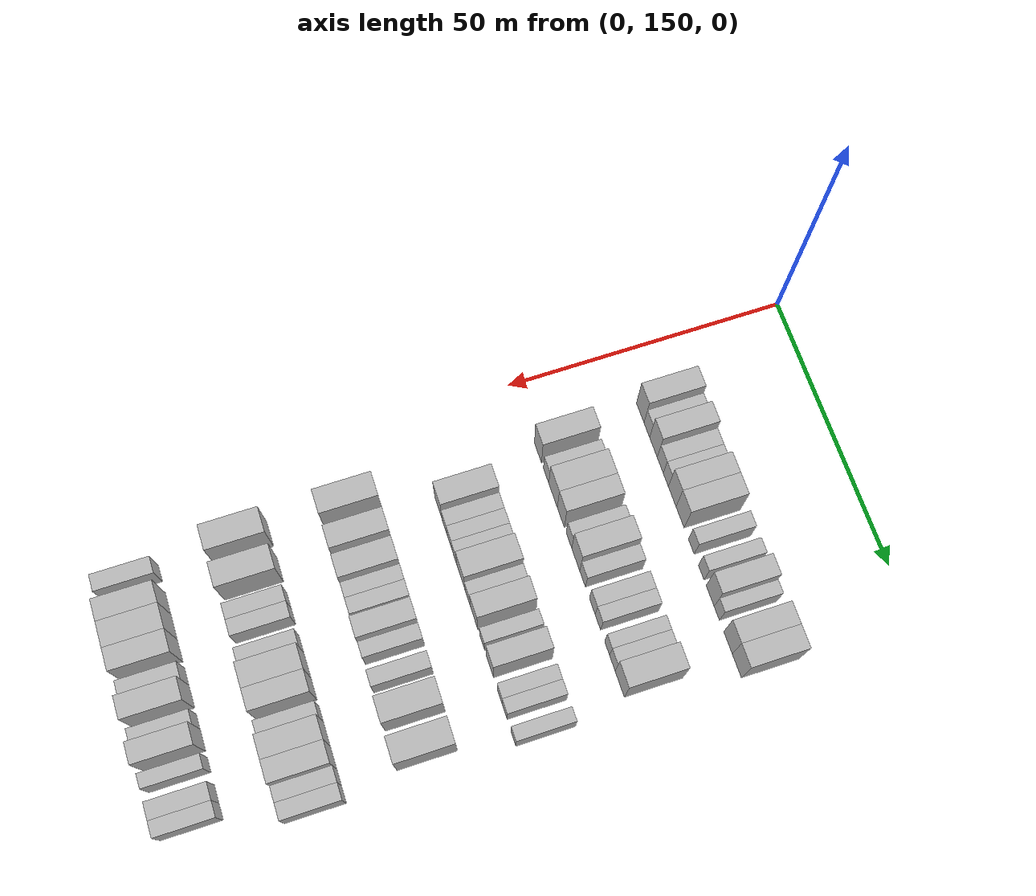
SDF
<sdf version="1.6">
 <world name="default">
  <model name="building_127">
   <static>1</static>
   <pose>25.0000 161.7961 0 0.000000 0.000000 0.000000</pose>
   <link name="link">
    <pose>0 0 4.50 0 0 0</pose>
    <collision name="collision"><geometry><box><size>10.0000 3.7832 9.0000</size></box></geometry></collision>
    <visual name="visual">
     <cast_shadows>0</cast_shadows>
     <geometry><box><size>10.0000 3.7832 9.0000</size></box></geometry>
     <material>
      <script>
       <uri>model://HANNAS_wall/materials/scripts</uri>
       <uri>model://HANNAS_wall/materials/textures</uri>
       <name>vrc/HANNAS_wall</name>
      </script>
     </material>
    </visual>
   </link>
  </model>
  <model name="building_128">
   <static>1</static>
   <pose>25.0000 165.1028 0 0.000000 0.000000 0.000000</pose>
   <link name="link">
    <pose>0 0 3.00 0 0 0</pose>
    <collision name="collision"><geometry><box><size>10.0000 2.8303 6.0000</size></box></geometry></collision>
    <visual name="visual">
     <cast_shadows>0</cast_shadows>
     <geometry><box><size>10.0000 2.8303 6.0000</size></box></geometry>
     <material>
      <script>
       <uri>model://HANNAS_wall/materials/scripts</uri>
       <uri>model://HANNAS_wall/materials/textures</uri>
       <name>vrc/HANNAS_wall</name>
      </script>
     </material>
    </visual>
   </link>
  </model>
  <model name="building_129">
   <static>1</static>
   <pose>25.0000 168.3962 0 0.000000 0.000000 0.000000</pose>
   <link name="link">
    <pose>0 0 4.50 0 0 0</pose>
    <collision name="collision"><geometry><box><size>10.0000 3.7565 9.0000</size></box></geometry></collision>
    <visual name="visual">
     <cast_shadows>0</cast_shadows>
     <geometry><box><size>10.0000 3.7565 9.0000</size></box></geometry>
     <material>
      <script>
       <uri>model://HANNAS_wall/materials/scripts</uri>
       <uri>model://HANNAS_wall/materials/textures</uri>
       <name>vrc/HANNAS_wall</name>
      </script>
     </material>
    </visual>
   </link>
  </model>
  <model name="building_130">
   <static>1</static>
   <pose>25.0000 171.7660 0 0.000000 0.000000 0.000000</pose>
   <link name="link">
    <pose>0 0 3.00 0 0 0</pose>
    <collision name="collision"><geometry><box><size>10.0000 2.9831 6.0000</size></box></geometry></collision>
    <visual name="visual">
     <cast_shadows>0</cast_shadows>
     <geometry><box><size>10.0000 2.9831 6.0000</size></box></geometry>
     <material>
      <script>
       <uri>model://HANNAS_wall/materials/scripts</uri>
       <uri>model://HANNAS_wall/materials/textures</uri>
       <name>vrc/HANNAS_wall</name>
      </script>
     </material>
    </visual>
   </link>
  </model>
  <model name="building_131">
   <static>1</static>
   <pose>25.0000 174.5107 0 0.000000 0.000000 0.000000</pose>
   <link name="link">
    <pose>0 0 3.00 0 0 0</pose>
    <collision name="collision"><geometry><box><size>10.0000 2.5063 6.0000</size></box></geometry></collision>
    <visual name="visual">
     <cast_shadows>0</cast_shadows>
     <geometry><box><size>10.0000 2.5063 6.0000</size></box></geometry>
     <material>
      <script>
       <uri>model://HANNAS_wall/materials/scripts</uri>
       <uri>model://HANNAS_wall/materials/textures</uri>
       <name>vrc/HANNAS_wall</name>
      </script>
     </material>
    </visual>
   </link>
  </model>
  <model name="building_132">
   <static>1</static>
   <pose>25.0000 177.6328 0 0.000000 0.000000 0.000000</pose>
   <link name="link">
    <pose>0 0 4.50 0 0 0</pose>
    <collision name="collision"><geometry><box><size>10.0000 3.7377 9.0000</size></box></geometry></collision>
    <visual name="visual">
     <cast_shadows>0</cast_shadows>
     <geometry><box><size>10.0000 3.7377 9.0000</size></box></geometry>
     <material>
      <script>
       <uri>model://HANNAS_wall/materials/scripts</uri>
       <uri>model://HANNAS_wall/materials/textures</uri>
       <name>vrc/HANNAS_wall</name>
      </script>
     </material>
    </visual>
   </link>
  </model>
  <model name="building_133">
   <static>1</static>
   <pose>25.0000 181.4493 0 0.000000 0.000000 0.000000</pose>
   <link name="link">
    <pose>0 0 4.50 0 0 0</pose>
    <collision name="collision"><geometry><box><size>10.0000 3.8953 9.0000</size></box></geometry></collision>
    <visual name="visual">
     <cast_shadows>0</cast_shadows>
     <geometry><box><size>10.0000 3.8953 9.0000</size></box></geometry>
     <material>
      <script>
       <uri>model://HANNAS_wall/materials/scripts</uri>
       <uri>model://HANNAS_wall/materials/textures</uri>
       <name>vrc/HANNAS_wall</name>
      </script>
     </material>
    </visual>
   </link>
  </model>
  <model name="building_134">
   <static>1</static>
   <pose>25.0000 186.7796 0 0.000000 0.000000 0.000000</pose>
   <link name="link">
    <pose>0 0 3.00 0 0 0</pose>
    <collision name="collision"><geometry><box><size>10.0000 2.7653 6.0000</size></box></geometry></collision>
    <visual name="visual">
     <cast_shadows>0</cast_shadows>
     <geometry><box><size>10.0000 2.7653 6.0000</size></box></geometry>
     <material>
      <script>
       <uri>model://HANNAS_wall/materials/scripts</uri>
       <uri>model://HANNAS_wall/materials/textures</uri>
       <name>vrc/HANNAS_wall</name>
      </script>
     </material>
    </visual>
   </link>
  </model>
  <model name="building_135">
   <static>1</static>
   <pose>25.0000 191.4811 0 0.000000 0.000000 0.000000</pose>
   <link name="link">
    <pose>0 0 3.00 0 0 0</pose>
    <collision name="collision"><geometry><box><size>10.0000 2.6375 6.0000</size></box></geometry></collision>
    <visual name="visual">
     <cast_shadows>0</cast_shadows>
     <geometry><box><size>10.0000 2.6375 6.0000</size></box></geometry>
     <material>
      <script>
       <uri>model://HANNAS_wall/materials/scripts</uri>
       <uri>model://HANNAS_wall/materials/textures</uri>
       <name>vrc/HANNAS_wall</name>
      </script>
     </material>
    </visual>
   </link>
  </model>
  <model name="building_136">
   <static>1</static>
   <pose>25.0000 195.6498 0 0.000000 0.000000 0.000000</pose>
   <link name="link">
    <pose>0 0 4.50 0 0 0</pose>
    <collision name="collision"><geometry><box><size>10.0000 3.6999 9.0000</size></box></geometry></collision>
    <visual name="visual">
     <cast_shadows>0</cast_shadows>
     <geometry><box><size>10.0000 3.6999 9.0000</size></box></geometry>
     <material>
      <script>
       <uri>model://HANNAS_wall/materials/scripts</uri>
       <uri>model://HANNAS_wall/materials/textures</uri>
       <name>vrc/HANNAS_wall</name>
      </script>
     </material>
    </visual>
   </link>
  </model>
  <model name="building_137">
   <static>1</static>
   <pose>25.0000 198.7063 0 0.000000 0.000000 0.000000</pose>
   <link name="link">
    <pose>0 0 3.00 0 0 0</pose>
    <collision name="collision"><geometry><box><size>10.0000 2.4130 6.0000</size></box></geometry></collision>
    <visual name="visual">
     <cast_shadows>0</cast_shadows>
     <geometry><box><size>10.0000 2.4130 6.0000</size></box></geometry>
     <material>
      <script>
       <uri>model://HANNAS_wall/materials/scripts</uri>
       <uri>model://HANNAS_wall/materials/textures</uri>
       <name>vrc/HANNAS_wall</name>
      </script>
     </material>
    </visual>
   </link>
  </model>
  <model name="building_138">
   <static>1</static>
   <pose>25.0000 203.8510 0 0.000000 0.000000 0.000000</pose>
   <link name="link">
    <pose>0 0 4.50 0 0 0</pose>
    <collision name="collision"><geometry><box><size>10.0000 3.8765 9.0000</size></box></geometry></collision>
    <visual name="visual">
     <cast_shadows>0</cast_shadows>
     <geometry><box><size>10.0000 3.8765 9.0000</size></box></geometry>
     <material>
      <script>
       <uri>model://HANNAS_wall/materials/scripts</uri>
       <uri>model://HANNAS_wall/materials/textures</uri>
       <name>vrc/HANNAS_wall</name>
      </script>
     </material>
    </visual>
   </link>
  </model>
  <model name="building_139">
   <static>1</static>
   <pose>25.0000 207.8339 0 0.000000 0.000000 0.000000</pose>
   <link name="link">
    <pose>0 0 4.50 0 0 0</pose>
    <collision name="collision"><geometry><box><size>10.0000 4.0893 9.0000</size></box></geometry></collision>
    <visual name="visual">
     <cast_shadows>0</cast_shadows>
     <geometry><box><size>10.0000 4.0893 9.0000</size></box></geometry>
     <material>
      <script>
       <uri>model://HANNAS_wall/materials/scripts</uri>
       <uri>model://HANNAS_wall/materials/textures</uri>
       <name>vrc/HANNAS_wall</name>
      </script>
     </material>
    </visual>
   </link>
  </model>
  <model name="building_310">
   <static>1</static>
   <pose>44.0000 163.2415 0 0.000000 0.000000 0.000000</pose>
   <link name="link">
    <pose>0 0 4.50 0 0 0</pose>
    <collision name="collision"><geometry><box><size>10.0000 3.8081 9.0000</size></box></geometry></collision>
    <visual name="visual">
     <cast_shadows>0</cast_shadows>
     <geometry><box><size>10.0000 3.8081 9.0000</size></box></geometry>
     <material>
      <script>
       <uri>model://HANNAS_wall/materials/scripts</uri>
       <uri>model://HANNAS_wall/materials/textures</uri>
       <name>vrc/HANNAS_wall</name>
      </script>
     </material>
    </visual>
   </link>
  </model>
  <model name="building_311">
   <static>1</static>
   <pose>44.0000 167.5803 0 0.000000 0.000000 0.000000</pose>
   <link name="link">
    <pose>0 0 3.00 0 0 0</pose>
    <collision name="collision"><geometry><box><size>10.0000 2.8695 6.0000</size></box></geometry></collision>
    <visual name="visual">
     <cast_shadows>0</cast_shadows>
     <geometry><box><size>10.0000 2.8695 6.0000</size></box></geometry>
     <material>
      <script>
       <uri>model://HANNAS_wall/materials/scripts</uri>
       <uri>model://HANNAS_wall/materials/textures</uri>
       <name>vrc/HANNAS_wall</name>
      </script>
     </material>
    </visual>
   </link>
  </model>
  <model name="building_312">
   <static>1</static>
   <pose>44.0000 171.2440 0 0.000000 0.000000 0.000000</pose>
   <link name="link">
    <pose>0 0 4.50 0 0 0</pose>
    <collision name="collision"><geometry><box><size>10.0000 4.4579 9.0000</size></box></geometry></collision>
    <visual name="visual">
     <cast_shadows>0</cast_shadows>
     <geometry><box><size>10.0000 4.4579 9.0000</size></box></geometry>
     <material>
      <script>
       <uri>model://HANNAS_wall/materials/scripts</uri>
       <uri>model://HANNAS_wall/materials/textures</uri>
       <name>vrc/HANNAS_wall</name>
      </script>
     </material>
    </visual>
   </link>
  </model>
  <model name="building_313">
   <static>1</static>
   <pose>44.0000 175.2839 0 0.000000 0.000000 0.000000</pose>
   <link name="link">
    <pose>0 0 4.50 0 0 0</pose>
    <collision name="collision"><geometry><box><size>10.0000 3.6220 9.0000</size></box></geometry></collision>
    <visual name="visual">
     <cast_shadows>0</cast_shadows>
     <geometry><box><size>10.0000 3.6220 9.0000</size></box></geometry>
     <material>
      <script>
       <uri>model://HANNAS_wall/materials/scripts</uri>
       <uri>model://HANNAS_wall/materials/textures</uri>
       <name>vrc/HANNAS_wall</name>
      </script>
     </material>
    </visual>
   </link>
  </model>
  <model name="building_314">
   <static>1</static>
   <pose>44.0000 179.5180 0 0.000000 0.000000 0.000000</pose>
   <link name="link">
    <pose>0 0 3.00 0 0 0</pose>
    <collision name="collision"><geometry><box><size>10.0000 2.8461 6.0000</size></box></geometry></collision>
    <visual name="visual">
     <cast_shadows>0</cast_shadows>
     <geometry><box><size>10.0000 2.8461 6.0000</size></box></geometry>
     <material>
      <script>
       <uri>model://HANNAS_wall/materials/scripts</uri>
       <uri>model://HANNAS_wall/materials/textures</uri>
       <name>vrc/HANNAS_wall</name>
      </script>
     </material>
    </visual>
   </link>
  </model>
  <model name="building_315">
   <static>1</static>
   <pose>44.0000 182.9793 0 0.000000 0.000000 0.000000</pose>
   <link name="link">
    <pose>0 0 4.50 0 0 0</pose>
    <collision name="collision"><geometry><box><size>10.0000 4.0766 9.0000</size></box></geometry></collision>
    <visual name="visual">
     <cast_shadows>0</cast_shadows>
     <geometry><box><size>10.0000 4.0766 9.0000</size></box></geometry>
     <material>
      <script>
       <uri>model://HANNAS_wall/materials/scripts</uri>
       <uri>model://HANNAS_wall/materials/textures</uri>
       <name>vrc/HANNAS_wall</name>
      </script>
     </material>
    </visual>
   </link>
  </model>
  <model name="building_316">
   <static>1</static>
   <pose>44.0000 186.4367 0 0.000000 0.000000 0.000000</pose>
   <link name="link">
    <pose>0 0 3.00 0 0 0</pose>
    <collision name="collision"><geometry><box><size>10.0000 2.8381 6.0000</size></box></geometry></collision>
    <visual name="visual">
     <cast_shadows>0</cast_shadows>
     <geometry><box><size>10.0000 2.8381 6.0000</size></box></geometry>
     <material>
      <script>
       <uri>model://HANNAS_wall/materials/scripts</uri>
       <uri>model://HANNAS_wall/materials/textures</uri>
       <name>vrc/HANNAS_wall</name>
      </script>
     </material>
    </visual>
   </link>
  </model>
  <model name="building_317">
   <static>1</static>
   <pose>44.0000 191.3075 0 0.000000 0.000000 0.000000</pose>
   <link name="link">
    <pose>0 0 3.00 0 0 0</pose>
    <collision name="collision"><geometry><box><size>10.0000 2.9035 6.0000</size></box></geometry></collision>
    <visual name="visual">
     <cast_shadows>0</cast_shadows>
     <geometry><box><size>10.0000 2.9035 6.0000</size></box></geometry>
     <material>
      <script>
       <uri>model://HANNAS_wall/materials/scripts</uri>
       <uri>model://HANNAS_wall/materials/textures</uri>
       <name>vrc/HANNAS_wall</name>
      </script>
     </material>
    </visual>
   </link>
  </model>
  <model name="building_318">
   <static>1</static>
   <pose>44.0000 194.0905 0 0.000000 0.000000 0.000000</pose>
   <link name="link">
    <pose>0 0 3.00 0 0 0</pose>
    <collision name="collision"><geometry><box><size>10.0000 2.6626 6.0000</size></box></geometry></collision>
    <visual name="visual">
     <cast_shadows>0</cast_shadows>
     <geometry><box><size>10.0000 2.6626 6.0000</size></box></geometry>
     <material>
      <script>
       <uri>model://HANNAS_wall/materials/scripts</uri>
       <uri>model://HANNAS_wall/materials/textures</uri>
       <name>vrc/HANNAS_wall</name>
      </script>
     </material>
    </visual>
   </link>
  </model>
  <model name="building_319">
   <static>1</static>
   <pose>44.0000 198.6370 0 0.000000 0.000000 0.000000</pose>
   <link name="link">
    <pose>0 0 3.00 0 0 0</pose>
    <collision name="collision"><geometry><box><size>10.0000 2.4304 6.0000</size></box></geometry></collision>
    <visual name="visual">
     <cast_shadows>0</cast_shadows>
     <geometry><box><size>10.0000 2.4304 6.0000</size></box></geometry>
     <material>
      <script>
       <uri>model://HANNAS_wall/materials/scripts</uri>
       <uri>model://HANNAS_wall/materials/textures</uri>
       <name>vrc/HANNAS_wall</name>
      </script>
     </material>
    </visual>
   </link>
  </model>
  <model name="building_320">
   <static>1</static>
   <pose>44.0000 201.2159 0 0.000000 0.000000 0.000000</pose>
   <link name="link">
    <pose>0 0 3.00 0 0 0</pose>
    <collision name="collision"><geometry><box><size>10.0000 2.7273 6.0000</size></box></geometry></collision>
    <visual name="visual">
     <cast_shadows>0</cast_shadows>
     <geometry><box><size>10.0000 2.7273 6.0000</size></box></geometry>
     <material>
      <script>
       <uri>model://HANNAS_wall/materials/scripts</uri>
       <uri>model://HANNAS_wall/materials/textures</uri>
       <name>vrc/HANNAS_wall</name>
      </script>
     </material>
    </visual>
   </link>
  </model>
  <model name="building_321">
   <static>1</static>
   <pose>44.0000 204.7712 0 0.000000 0.000000 0.000000</pose>
   <link name="link">
    <pose>0 0 4.50 0 0 0</pose>
    <collision name="collision"><geometry><box><size>10.0000 4.3834 9.0000</size></box></geometry></collision>
    <visual name="visual">
     <cast_shadows>0</cast_shadows>
     <geometry><box><size>10.0000 4.3834 9.0000</size></box></geometry>
     <material>
      <script>
       <uri>model://HANNAS_wall/materials/scripts</uri>
       <uri>model://HANNAS_wall/materials/textures</uri>
       <name>vrc/HANNAS_wall</name>
      </script>
     </material>
    </visual>
   </link>
  </model>
  <model name="building_482">
   <static>1</static>
   <pose>63.0000 167.6338 0 0.000000 0.000000 0.000000</pose>
   <link name="link">
    <pose>0 0 4.50 0 0 0</pose>
    <collision name="collision"><geometry><box><size>10.0000 4.1057 9.0000</size></box></geometry></collision>
    <visual name="visual">
     <cast_shadows>0</cast_shadows>
     <geometry><box><size>10.0000 4.1057 9.0000</size></box></geometry>
     <material>
      <script>
       <uri>model://HANNAS_wall/materials/scripts</uri>
       <uri>model://HANNAS_wall/materials/textures</uri>
       <name>vrc/HANNAS_wall</name>
      </script>
     </material>
    </visual>
   </link>
  </model>
  <model name="building_483">
   <static>1</static>
   <pose>63.0000 171.0807 0 0.000000 0.000000 0.000000</pose>
   <link name="link">
    <pose>0 0 3.00 0 0 0</pose>
    <collision name="collision"><geometry><box><size>10.0000 2.7881 6.0000</size></box></geometry></collision>
    <visual name="visual">
     <cast_shadows>0</cast_shadows>
     <geometry><box><size>10.0000 2.7881 6.0000</size></box></geometry>
     <material>
      <script>
       <uri>model://HANNAS_wall/materials/scripts</uri>
       <uri>model://HANNAS_wall/materials/textures</uri>
       <name>vrc/HANNAS_wall</name>
      </script>
     </material>
    </visual>
   </link>
  </model>
  <model name="building_484">
   <static>1</static>
   <pose>63.0000 173.8352 0 0.000000 0.000000 0.000000</pose>
   <link name="link">
    <pose>0 0 3.00 0 0 0</pose>
    <collision name="collision"><geometry><box><size>10.0000 2.7208 6.0000</size></box></geometry></collision>
    <visual name="visual">
     <cast_shadows>0</cast_shadows>
     <geometry><box><size>10.0000 2.7208 6.0000</size></box></geometry>
     <material>
      <script>
       <uri>model://HANNAS_wall/materials/scripts</uri>
       <uri>model://HANNAS_wall/materials/textures</uri>
       <name>vrc/HANNAS_wall</name>
      </script>
     </material>
    </visual>
   </link>
  </model>
  <model name="building_485">
   <static>1</static>
   <pose>63.0000 176.5197 0 0.000000 0.000000 0.000000</pose>
   <link name="link">
    <pose>0 0 3.00 0 0 0</pose>
    <collision name="collision"><geometry><box><size>10.0000 2.6481 6.0000</size></box></geometry></collision>
    <visual name="visual">
     <cast_shadows>0</cast_shadows>
     <geometry><box><size>10.0000 2.6481 6.0000</size></box></geometry>
     <material>
      <script>
       <uri>model://HANNAS_wall/materials/scripts</uri>
       <uri>model://HANNAS_wall/materials/textures</uri>
       <name>vrc/HANNAS_wall</name>
      </script>
     </material>
    </visual>
   </link>
  </model>
  <model name="building_486">
   <static>1</static>
   <pose>63.0000 180.0721 0 0.000000 0.000000 0.000000</pose>
   <link name="link">
    <pose>0 0 4.50 0 0 0</pose>
    <collision name="collision"><geometry><box><size>10.0000 4.4567 9.0000</size></box></geometry></collision>
    <visual name="visual">
     <cast_shadows>0</cast_shadows>
     <geometry><box><size>10.0000 4.4567 9.0000</size></box></geometry>
     <material>
      <script>
       <uri>model://HANNAS_wall/materials/scripts</uri>
       <uri>model://HANNAS_wall/materials/textures</uri>
       <name>vrc/HANNAS_wall</name>
      </script>
     </material>
    </visual>
   </link>
  </model>
  <model name="building_487">
   <static>1</static>
   <pose>63.0000 183.7830 0 0.000000 0.000000 0.000000</pose>
   <link name="link">
    <pose>0 0 3.00 0 0 0</pose>
    <collision name="collision"><geometry><box><size>10.0000 2.9651 6.0000</size></box></geometry></collision>
    <visual name="visual">
     <cast_shadows>0</cast_shadows>
     <geometry><box><size>10.0000 2.9651 6.0000</size></box></geometry>
     <material>
      <script>
       <uri>model://HANNAS_wall/materials/scripts</uri>
       <uri>model://HANNAS_wall/materials/textures</uri>
       <name>vrc/HANNAS_wall</name>
      </script>
     </material>
    </visual>
   </link>
  </model>
  <model name="building_488">
   <static>1</static>
   <pose>63.0000 187.2101 0 0.000000 0.000000 0.000000</pose>
   <link name="link">
    <pose>0 0 4.50 0 0 0</pose>
    <collision name="collision"><geometry><box><size>10.0000 3.8890 9.0000</size></box></geometry></collision>
    <visual name="visual">
     <cast_shadows>0</cast_shadows>
     <geometry><box><size>10.0000 3.8890 9.0000</size></box></geometry>
     <material>
      <script>
       <uri>model://HANNAS_wall/materials/scripts</uri>
       <uri>model://HANNAS_wall/materials/textures</uri>
       <name>vrc/HANNAS_wall</name>
      </script>
     </material>
    </visual>
   </link>
  </model>
  <model name="building_489">
   <static>1</static>
   <pose>63.0000 191.4696 0 0.000000 0.000000 0.000000</pose>
   <link name="link">
    <pose>0 0 3.00 0 0 0</pose>
    <collision name="collision"><geometry><box><size>10.0000 2.6301 6.0000</size></box></geometry></collision>
    <visual name="visual">
     <cast_shadows>0</cast_shadows>
     <geometry><box><size>10.0000 2.6301 6.0000</size></box></geometry>
     <material>
      <script>
       <uri>model://HANNAS_wall/materials/scripts</uri>
       <uri>model://HANNAS_wall/materials/textures</uri>
       <name>vrc/HANNAS_wall</name>
      </script>
     </material>
    </visual>
   </link>
  </model>
  <model name="building_490">
   <static>1</static>
   <pose>63.0000 195.6108 0 0.000000 0.000000 0.000000</pose>
   <link name="link">
    <pose>0 0 4.50 0 0 0</pose>
    <collision name="collision"><geometry><box><size>10.0000 3.6524 9.0000</size></box></geometry></collision>
    <visual name="visual">
     <cast_shadows>0</cast_shadows>
     <geometry><box><size>10.0000 3.6524 9.0000</size></box></geometry>
     <material>
      <script>
       <uri>model://HANNAS_wall/materials/scripts</uri>
       <uri>model://HANNAS_wall/materials/textures</uri>
       <name>vrc/HANNAS_wall</name>
      </script>
     </material>
    </visual>
   </link>
  </model>
  <model name="building_491">
   <static>1</static>
   <pose>63.0000 200.7070 0 0.000000 0.000000 0.000000</pose>
   <link name="link">
    <pose>0 0 3.00 0 0 0</pose>
    <collision name="collision"><geometry><box><size>10.0000 2.5400 6.0000</size></box></geometry></collision>
    <visual name="visual">
     <cast_shadows>0</cast_shadows>
     <geometry><box><size>10.0000 2.5400 6.0000</size></box></geometry>
     <material>
      <script>
       <uri>model://HANNAS_wall/materials/scripts</uri>
       <uri>model://HANNAS_wall/materials/textures</uri>
       <name>vrc/HANNAS_wall</name>
      </script>
     </material>
    </visual>
   </link>
  </model>
  <model name="building_492">
   <static>1</static>
   <pose>63.0000 203.2400 0 0.000000 0.000000 0.000000</pose>
   <link name="link">
    <pose>0 0 3.00 0 0 0</pose>
    <collision name="collision"><geometry><box><size>10.0000 2.5259 6.0000</size></box></geometry></collision>
    <visual name="visual">
     <cast_shadows>0</cast_shadows>
     <geometry><box><size>10.0000 2.5259 6.0000</size></box></geometry>
     <material>
      <script>
       <uri>model://HANNAS_wall/materials/scripts</uri>
       <uri>model://HANNAS_wall/materials/textures</uri>
       <name>vrc/HANNAS_wall</name>
      </script>
     </material>
    </visual>
   </link>
  </model>
  <model name="building_493">
   <static>1</static>
   <pose>63.0000 207.7308 0 0.000000 0.000000 0.000000</pose>
   <link name="link">
    <pose>0 0 3.00 0 0 0</pose>
    <collision name="collision"><geometry><box><size>10.0000 2.4558 6.0000</size></box></geometry></collision>
    <visual name="visual">
     <cast_shadows>0</cast_shadows>
     <geometry><box><size>10.0000 2.4558 6.0000</size></box></geometry>
     <material>
      <script>
       <uri>model://HANNAS_wall/materials/scripts</uri>
       <uri>model://HANNAS_wall/materials/textures</uri>
       <name>vrc/HANNAS_wall</name>
      </script>
     </material>
    </visual>
   </link>
  </model>
  <model name="building_655">
   <static>1</static>
   <pose>82.0000 162.8826 0 0.000000 0.000000 0.000000</pose>
   <link name="link">
    <pose>0 0 4.50 0 0 0</pose>
    <collision name="collision"><geometry><box><size>10.0000 4.3140 9.0000</size></box></geometry></collision>
    <visual name="visual">
     <cast_shadows>0</cast_shadows>
     <geometry><box><size>10.0000 4.3140 9.0000</size></box></geometry>
     <material>
      <script>
       <uri>model://HANNAS_wall/materials/scripts</uri>
       <uri>model://HANNAS_wall/materials/textures</uri>
       <name>vrc/HANNAS_wall</name>
      </script>
     </material>
    </visual>
   </link>
  </model>
  <model name="building_656">
   <static>1</static>
   <pose>82.0000 169.0622 0 0.000000 0.000000 0.000000</pose>
   <link name="link">
    <pose>0 0 4.50 0 0 0</pose>
    <collision name="collision"><geometry><box><size>10.0000 4.0453 9.0000</size></box></geometry></collision>
    <visual name="visual">
     <cast_shadows>0</cast_shadows>
     <geometry><box><size>10.0000 4.0453 9.0000</size></box></geometry>
     <material>
      <script>
       <uri>model://HANNAS_wall/materials/scripts</uri>
       <uri>model://HANNAS_wall/materials/textures</uri>
       <name>vrc/HANNAS_wall</name>
      </script>
     </material>
    </visual>
   </link>
  </model>
  <model name="building_657">
   <static>1</static>
   <pose>82.0000 174.1286 0 0.000000 0.000000 0.000000</pose>
   <link name="link">
    <pose>0 0 4.50 0 0 0</pose>
    <collision name="collision"><geometry><box><size>10.0000 4.0875 9.0000</size></box></geometry></collision>
    <visual name="visual">
     <cast_shadows>0</cast_shadows>
     <geometry><box><size>10.0000 4.0875 9.0000</size></box></geometry>
     <material>
      <script>
       <uri>model://HANNAS_wall/materials/scripts</uri>
       <uri>model://HANNAS_wall/materials/textures</uri>
       <name>vrc/HANNAS_wall</name>
      </script>
     </material>
    </visual>
   </link>
  </model>
  <model name="building_658">
   <static>1</static>
   <pose>82.0000 177.5063 0 0.000000 0.000000 0.000000</pose>
   <link name="link">
    <pose>0 0 3.00 0 0 0</pose>
    <collision name="collision"><geometry><box><size>10.0000 2.6679 6.0000</size></box></geometry></collision>
    <visual name="visual">
     <cast_shadows>0</cast_shadows>
     <geometry><box><size>10.0000 2.6679 6.0000</size></box></geometry>
     <material>
      <script>
       <uri>model://HANNAS_wall/materials/scripts</uri>
       <uri>model://HANNAS_wall/materials/textures</uri>
       <name>vrc/HANNAS_wall</name>
      </script>
     </material>
    </visual>
   </link>
  </model>
  <model name="building_659">
   <static>1</static>
   <pose>82.0000 180.2355 0 0.000000 0.000000 0.000000</pose>
   <link name="link">
    <pose>0 0 3.00 0 0 0</pose>
    <collision name="collision"><geometry><box><size>10.0000 2.7905 6.0000</size></box></geometry></collision>
    <visual name="visual">
     <cast_shadows>0</cast_shadows>
     <geometry><box><size>10.0000 2.7905 6.0000</size></box></geometry>
     <material>
      <script>
       <uri>model://HANNAS_wall/materials/scripts</uri>
       <uri>model://HANNAS_wall/materials/textures</uri>
       <name>vrc/HANNAS_wall</name>
      </script>
     </material>
    </visual>
   </link>
  </model>
  <model name="building_660">
   <static>1</static>
   <pose>82.0000 184.4679 0 0.000000 0.000000 0.000000</pose>
   <link name="link">
    <pose>0 0 4.50 0 0 0</pose>
    <collision name="collision"><geometry><box><size>10.0000 3.6744 9.0000</size></box></geometry></collision>
    <visual name="visual">
     <cast_shadows>0</cast_shadows>
     <geometry><box><size>10.0000 3.6744 9.0000</size></box></geometry>
     <material>
      <script>
       <uri>model://HANNAS_wall/materials/scripts</uri>
       <uri>model://HANNAS_wall/materials/textures</uri>
       <name>vrc/HANNAS_wall</name>
      </script>
     </material>
    </visual>
   </link>
  </model>
  <model name="building_661">
   <static>1</static>
   <pose>82.0000 187.6621 0 0.000000 0.000000 0.000000</pose>
   <link name="link">
    <pose>0 0 3.00 0 0 0</pose>
    <collision name="collision"><geometry><box><size>10.0000 2.7140 6.0000</size></box></geometry></collision>
    <visual name="visual">
     <cast_shadows>0</cast_shadows>
     <geometry><box><size>10.0000 2.7140 6.0000</size></box></geometry>
     <material>
      <script>
       <uri>model://HANNAS_wall/materials/scripts</uri>
       <uri>model://HANNAS_wall/materials/textures</uri>
       <name>vrc/HANNAS_wall</name>
      </script>
     </material>
    </visual>
   </link>
  </model>
  <model name="building_662">
   <static>1</static>
   <pose>82.0000 192.4314 0 0.000000 0.000000 0.000000</pose>
   <link name="link">
    <pose>0 0 3.00 0 0 0</pose>
    <collision name="collision"><geometry><box><size>10.0000 2.8246 6.0000</size></box></geometry></collision>
    <visual name="visual">
     <cast_shadows>0</cast_shadows>
     <geometry><box><size>10.0000 2.8246 6.0000</size></box></geometry>
     <material>
      <script>
       <uri>model://HANNAS_wall/materials/scripts</uri>
       <uri>model://HANNAS_wall/materials/textures</uri>
       <name>vrc/HANNAS_wall</name>
      </script>
     </material>
    </visual>
   </link>
  </model>
  <model name="building_663">
   <static>1</static>
   <pose>82.0000 198.0566 0 0.000000 0.000000 0.000000</pose>
   <link name="link">
    <pose>0 0 4.50 0 0 0</pose>
    <collision name="collision"><geometry><box><size>10.0000 4.4259 9.0000</size></box></geometry></collision>
    <visual name="visual">
     <cast_shadows>0</cast_shadows>
     <geometry><box><size>10.0000 4.4259 9.0000</size></box></geometry>
     <material>
      <script>
       <uri>model://HANNAS_wall/materials/scripts</uri>
       <uri>model://HANNAS_wall/materials/textures</uri>
       <name>vrc/HANNAS_wall</name>
      </script>
     </material>
    </visual>
   </link>
  </model>
  <model name="building_664">
   <static>1</static>
   <pose>82.0000 204.5166 0 0.000000 0.000000 0.000000</pose>
   <link name="link">
    <pose>0 0 4.50 0 0 0</pose>
    <collision name="collision"><geometry><box><size>10.0000 4.4941 9.0000</size></box></geometry></collision>
    <visual name="visual">
     <cast_shadows>0</cast_shadows>
     <geometry><box><size>10.0000 4.4941 9.0000</size></box></geometry>
     <material>
      <script>
       <uri>model://HANNAS_wall/materials/scripts</uri>
       <uri>model://HANNAS_wall/materials/textures</uri>
       <name>vrc/HANNAS_wall</name>
      </script>
     </material>
    </visual>
   </link>
  </model>
  <model name="building_835">
   <static>1</static>
   <pose>101.0000 163.0352 0 0.000000 0.000000 0.000000</pose>
   <link name="link">
    <pose>0 0 4.50 0 0 0</pose>
    <collision name="collision"><geometry><box><size>10.0000 4.4605 9.0000</size></box></geometry></collision>
    <visual name="visual">
     <cast_shadows>0</cast_shadows>
     <geometry><box><size>10.0000 4.4605 9.0000</size></box></geometry>
     <material>
      <script>
       <uri>model://HANNAS_wall/materials/scripts</uri>
       <uri>model://HANNAS_wall/materials/textures</uri>
       <name>vrc/HANNAS_wall</name>
      </script>
     </material>
    </visual>
   </link>
  </model>
  <model name="building_836">
   <static>1</static>
   <pose>101.0000 169.4343 0 0.000000 0.000000 0.000000</pose>
   <link name="link">
    <pose>0 0 4.50 0 0 0</pose>
    <collision name="collision"><geometry><box><size>10.0000 4.3377 9.0000</size></box></geometry></collision>
    <visual name="visual">
     <cast_shadows>0</cast_shadows>
     <geometry><box><size>10.0000 4.3377 9.0000</size></box></geometry>
     <material>
      <script>
       <uri>model://HANNAS_wall/materials/scripts</uri>
       <uri>model://HANNAS_wall/materials/textures</uri>
       <name>vrc/HANNAS_wall</name>
      </script>
     </material>
    </visual>
   </link>
  </model>
  <model name="building_837">
   <static>1</static>
   <pose>101.0000 174.9863 0 0.000000 0.000000 0.000000</pose>
   <link name="link">
    <pose>0 0 3.00 0 0 0</pose>
    <collision name="collision"><geometry><box><size>10.0000 2.7664 6.0000</size></box></geometry></collision>
    <visual name="visual">
     <cast_shadows>0</cast_shadows>
     <geometry><box><size>10.0000 2.7664 6.0000</size></box></geometry>
     <material>
      <script>
       <uri>model://HANNAS_wall/materials/scripts</uri>
       <uri>model://HANNAS_wall/materials/textures</uri>
       <name>vrc/HANNAS_wall</name>
      </script>
     </material>
    </visual>
   </link>
  </model>
  <model name="building_838">
   <static>1</static>
   <pose>101.0000 177.7648 0 0.000000 0.000000 0.000000</pose>
   <link name="link">
    <pose>0 0 3.00 0 0 0</pose>
    <collision name="collision"><geometry><box><size>10.0000 2.7907 6.0000</size></box></geometry></collision>
    <visual name="visual">
     <cast_shadows>0</cast_shadows>
     <geometry><box><size>10.0000 2.7907 6.0000</size></box></geometry>
     <material>
      <script>
       <uri>model://HANNAS_wall/materials/scripts</uri>
       <uri>model://HANNAS_wall/materials/textures</uri>
       <name>vrc/HANNAS_wall</name>
      </script>
     </material>
    </visual>
   </link>
  </model>
  <model name="building_839">
   <static>1</static>
   <pose>101.0000 182.6315 0 0.000000 0.000000 0.000000</pose>
   <link name="link">
    <pose>0 0 3.00 0 0 0</pose>
    <collision name="collision"><geometry><box><size>10.0000 2.9426 6.0000</size></box></geometry></collision>
    <visual name="visual">
     <cast_shadows>0</cast_shadows>
     <geometry><box><size>10.0000 2.9426 6.0000</size></box></geometry>
     <material>
      <script>
       <uri>model://HANNAS_wall/materials/scripts</uri>
       <uri>model://HANNAS_wall/materials/textures</uri>
       <name>vrc/HANNAS_wall</name>
      </script>
     </material>
    </visual>
   </link>
  </model>
  <model name="building_840">
   <static>1</static>
   <pose>101.0000 186.2433 0 0.000000 0.000000 0.000000</pose>
   <link name="link">
    <pose>0 0 4.50 0 0 0</pose>
    <collision name="collision"><geometry><box><size>10.0000 4.2809 9.0000</size></box></geometry></collision>
    <visual name="visual">
     <cast_shadows>0</cast_shadows>
     <geometry><box><size>10.0000 4.2809 9.0000</size></box></geometry>
     <material>
      <script>
       <uri>model://HANNAS_wall/materials/scripts</uri>
       <uri>model://HANNAS_wall/materials/textures</uri>
       <name>vrc/HANNAS_wall</name>
      </script>
     </material>
    </visual>
   </link>
  </model>
  <model name="building_841">
   <static>1</static>
   <pose>101.0000 190.2624 0 0.000000 0.000000 0.000000</pose>
   <link name="link">
    <pose>0 0 4.50 0 0 0</pose>
    <collision name="collision"><geometry><box><size>10.0000 3.7574 9.0000</size></box></geometry></collision>
    <visual name="visual">
     <cast_shadows>0</cast_shadows>
     <geometry><box><size>10.0000 3.7574 9.0000</size></box></geometry>
     <material>
      <script>
       <uri>model://HANNAS_wall/materials/scripts</uri>
       <uri>model://HANNAS_wall/materials/textures</uri>
       <name>vrc/HANNAS_wall</name>
      </script>
     </material>
    </visual>
   </link>
  </model>
  <model name="building_842">
   <static>1</static>
   <pose>101.0000 194.4679 0 0.000000 0.000000 0.000000</pose>
   <link name="link">
    <pose>0 0 3.00 0 0 0</pose>
    <collision name="collision"><geometry><box><size>10.0000 2.6536 6.0000</size></box></geometry></collision>
    <visual name="visual">
     <cast_shadows>0</cast_shadows>
     <geometry><box><size>10.0000 2.6536 6.0000</size></box></geometry>
     <material>
      <script>
       <uri>model://HANNAS_wall/materials/scripts</uri>
       <uri>model://HANNAS_wall/materials/textures</uri>
       <name>vrc/HANNAS_wall</name>
      </script>
     </material>
    </visual>
   </link>
  </model>
  <model name="building_843">
   <static>1</static>
   <pose>101.0000 197.8022 0 0.000000 0.000000 0.000000</pose>
   <link name="link">
    <pose>0 0 4.50 0 0 0</pose>
    <collision name="collision"><geometry><box><size>10.0000 4.0150 9.0000</size></box></geometry></collision>
    <visual name="visual">
     <cast_shadows>0</cast_shadows>
     <geometry><box><size>10.0000 4.0150 9.0000</size></box></geometry>
     <material>
      <script>
       <uri>model://HANNAS_wall/materials/scripts</uri>
       <uri>model://HANNAS_wall/materials/textures</uri>
       <name>vrc/HANNAS_wall</name>
      </script>
     </material>
    </visual>
   </link>
  </model>
  <model name="building_844">
   <static>1</static>
   <pose>101.0000 201.7057 0 0.000000 0.000000 0.000000</pose>
   <link name="link">
    <pose>0 0 4.50 0 0 0</pose>
    <collision name="collision"><geometry><box><size>10.0000 3.7920 9.0000</size></box></geometry></collision>
    <visual name="visual">
     <cast_shadows>0</cast_shadows>
     <geometry><box><size>10.0000 3.7920 9.0000</size></box></geometry>
     <material>
      <script>
       <uri>model://HANNAS_wall/materials/scripts</uri>
       <uri>model://HANNAS_wall/materials/textures</uri>
       <name>vrc/HANNAS_wall</name>
      </script>
     </material>
    </visual>
   </link>
  </model>
  <model name="building_845">
   <static>1</static>
   <pose>101.0000 204.9439 0 0.000000 0.000000 0.000000</pose>
   <link name="link">
    <pose>0 0 3.00 0 0 0</pose>
    <collision name="collision"><geometry><box><size>10.0000 2.6844 6.0000</size></box></geometry></collision>
    <visual name="visual">
     <cast_shadows>0</cast_shadows>
     <geometry><box><size>10.0000 2.6844 6.0000</size></box></geometry>
     <material>
      <script>
       <uri>model://HANNAS_wall/materials/scripts</uri>
       <uri>model://HANNAS_wall/materials/textures</uri>
       <name>vrc/HANNAS_wall</name>
      </script>
     </material>
    </visual>
   </link>
  </model>
  <model name="building_846">
   <static>1</static>
   <pose>101.0000 207.7098 0 0.000000 0.000000 0.000000</pose>
   <link name="link">
    <pose>0 0 3.00 0 0 0</pose>
    <collision name="collision"><geometry><box><size>10.0000 2.8473 6.0000</size></box></geometry></collision>
    <visual name="visual">
     <cast_shadows>0</cast_shadows>
     <geometry><box><size>10.0000 2.8473 6.0000</size></box></geometry>
     <material>
      <script>
       <uri>model://HANNAS_wall/materials/scripts</uri>
       <uri>model://HANNAS_wall/materials/textures</uri>
       <name>vrc/HANNAS_wall</name>
      </script>
     </material>
    </visual>
   </link>
  </model>
  <model name="building_1013">
   <static>1</static>
   <pose>120.0000 163.9108 0 0.000000 0.000000 0.000000</pose>
   <link name="link">
    <pose>0 0 3.00 0 0 0</pose>
    <collision name="collision"><geometry><box><size>10.0000 2.9303 6.0000</size></box></geometry></collision>
    <visual name="visual">
     <cast_shadows>0</cast_shadows>
     <geometry><box><size>10.0000 2.9303 6.0000</size></box></geometry>
     <material>
      <script>
       <uri>model://HANNAS_wall/materials/scripts</uri>
       <uri>model://HANNAS_wall/materials/textures</uri>
       <name>vrc/HANNAS_wall</name>
      </script>
     </material>
    </visual>
   </link>
  </model>
  <model name="building_1014">
   <static>1</static>
   <pose>120.0000 169.2611 0 0.000000 0.000000 0.000000</pose>
   <link name="link">
    <pose>0 0 4.50 0 0 0</pose>
    <collision name="collision"><geometry><box><size>10.0000 3.7704 9.0000</size></box></geometry></collision>
    <visual name="visual">
     <cast_shadows>0</cast_shadows>
     <geometry><box><size>10.0000 3.7704 9.0000</size></box></geometry>
     <material>
      <script>
       <uri>model://HANNAS_wall/materials/scripts</uri>
       <uri>model://HANNAS_wall/materials/textures</uri>
       <name>vrc/HANNAS_wall</name>
      </script>
     </material>
    </visual>
   </link>
  </model>
  <model name="building_1015">
   <static>1</static>
   <pose>120.0000 173.3437 0 0.000000 0.000000 0.000000</pose>
   <link name="link">
    <pose>0 0 4.50 0 0 0</pose>
    <collision name="collision"><geometry><box><size>10.0000 4.3947 9.0000</size></box></geometry></collision>
    <visual name="visual">
     <cast_shadows>0</cast_shadows>
     <geometry><box><size>10.0000 4.3947 9.0000</size></box></geometry>
     <material>
      <script>
       <uri>model://HANNAS_wall/materials/scripts</uri>
       <uri>model://HANNAS_wall/materials/textures</uri>
       <name>vrc/HANNAS_wall</name>
      </script>
     </material>
    </visual>
   </link>
  </model>
  <model name="building_1016">
   <static>1</static>
   <pose>120.0000 177.4876 0 0.000000 0.000000 0.000000</pose>
   <link name="link">
    <pose>0 0 4.50 0 0 0</pose>
    <collision name="collision"><geometry><box><size>10.0000 3.8930 9.0000</size></box></geometry></collision>
    <visual name="visual">
     <cast_shadows>0</cast_shadows>
     <geometry><box><size>10.0000 3.8930 9.0000</size></box></geometry>
     <material>
      <script>
       <uri>model://HANNAS_wall/materials/scripts</uri>
       <uri>model://HANNAS_wall/materials/textures</uri>
       <name>vrc/HANNAS_wall</name>
      </script>
     </material>
    </visual>
   </link>
  </model>
  <model name="building_1017">
   <static>1</static>
   <pose>120.0000 181.9177 0 0.000000 0.000000 0.000000</pose>
   <link name="link">
    <pose>0 0 3.00 0 0 0</pose>
    <collision name="collision"><geometry><box><size>10.0000 2.9673 6.0000</size></box></geometry></collision>
    <visual name="visual">
     <cast_shadows>0</cast_shadows>
     <geometry><box><size>10.0000 2.9673 6.0000</size></box></geometry>
     <material>
      <script>
       <uri>model://HANNAS_wall/materials/scripts</uri>
       <uri>model://HANNAS_wall/materials/textures</uri>
       <name>vrc/HANNAS_wall</name>
      </script>
     </material>
    </visual>
   </link>
  </model>
  <model name="building_1018">
   <static>1</static>
   <pose>120.0000 185.3449 0 0.000000 0.000000 0.000000</pose>
   <link name="link">
    <pose>0 0 4.50 0 0 0</pose>
    <collision name="collision"><geometry><box><size>10.0000 3.8870 9.0000</size></box></geometry></collision>
    <visual name="visual">
     <cast_shadows>0</cast_shadows>
     <geometry><box><size>10.0000 3.8870 9.0000</size></box></geometry>
     <material>
      <script>
       <uri>model://HANNAS_wall/materials/scripts</uri>
       <uri>model://HANNAS_wall/materials/textures</uri>
       <name>vrc/HANNAS_wall</name>
      </script>
     </material>
    </visual>
   </link>
  </model>
  <model name="building_1019">
   <static>1</static>
   <pose>120.0000 189.5365 0 0.000000 0.000000 0.000000</pose>
   <link name="link">
    <pose>0 0 3.00 0 0 0</pose>
    <collision name="collision"><geometry><box><size>10.0000 2.4962 6.0000</size></box></geometry></collision>
    <visual name="visual">
     <cast_shadows>0</cast_shadows>
     <geometry><box><size>10.0000 2.4962 6.0000</size></box></geometry>
     <material>
      <script>
       <uri>model://HANNAS_wall/materials/scripts</uri>
       <uri>model://HANNAS_wall/materials/textures</uri>
       <name>vrc/HANNAS_wall</name>
      </script>
     </material>
    </visual>
   </link>
  </model>
  <model name="building_1020">
   <static>1</static>
   <pose>120.0000 192.6233 0 0.000000 0.000000 0.000000</pose>
   <link name="link">
    <pose>0 0 4.50 0 0 0</pose>
    <collision name="collision"><geometry><box><size>10.0000 3.6773 9.0000</size></box></geometry></collision>
    <visual name="visual">
     <cast_shadows>0</cast_shadows>
     <geometry><box><size>10.0000 3.6773 9.0000</size></box></geometry>
     <material>
      <script>
       <uri>model://HANNAS_wall/materials/scripts</uri>
       <uri>model://HANNAS_wall/materials/textures</uri>
       <name>vrc/HANNAS_wall</name>
      </script>
     </material>
    </visual>
   </link>
  </model>
  <model name="building_1021">
   <static>1</static>
   <pose>120.0000 196.7063 0 0.000000 0.000000 0.000000</pose>
   <link name="link">
    <pose>0 0 3.00 0 0 0</pose>
    <collision name="collision"><geometry><box><size>10.0000 2.4888 6.0000</size></box></geometry></collision>
    <visual name="visual">
     <cast_shadows>0</cast_shadows>
     <geometry><box><size>10.0000 2.4888 6.0000</size></box></geometry>
     <material>
      <script>
       <uri>model://HANNAS_wall/materials/scripts</uri>
       <uri>model://HANNAS_wall/materials/textures</uri>
       <name>vrc/HANNAS_wall</name>
      </script>
     </material>
    </visual>
   </link>
  </model>
  <model name="building_1022">
   <static>1</static>
   <pose>120.0000 201.4278 0 0.000000 0.000000 0.000000</pose>
   <link name="link">
    <pose>0 0 3.00 0 0 0</pose>
    <collision name="collision"><geometry><box><size>10.0000 2.9542 6.0000</size></box></geometry></collision>
    <visual name="visual">
     <cast_shadows>0</cast_shadows>
     <geometry><box><size>10.0000 2.9542 6.0000</size></box></geometry>
     <material>
      <script>
       <uri>model://HANNAS_wall/materials/scripts</uri>
       <uri>model://HANNAS_wall/materials/textures</uri>
       <name>vrc/HANNAS_wall</name>
      </script>
     </material>
    </visual>
   </link>
  </model>
  <model name="building_1023">
   <static>1</static>
   <pose>120.0000 204.2754 0 0.000000 0.000000 0.000000</pose>
   <link name="link">
    <pose>0 0 3.00 0 0 0</pose>
    <collision name="collision"><geometry><box><size>10.0000 2.7409 6.0000</size></box></geometry></collision>
    <visual name="visual">
     <cast_shadows>0</cast_shadows>
     <geometry><box><size>10.0000 2.7409 6.0000</size></box></geometry>
     <material>
      <script>
       <uri>model://HANNAS_wall/materials/scripts</uri>
       <uri>model://HANNAS_wall/materials/textures</uri>
       <name>vrc/HANNAS_wall</name>
      </script>
     </material>
    </visual>
   </link>
  </model>
 </world>
</sdf>
